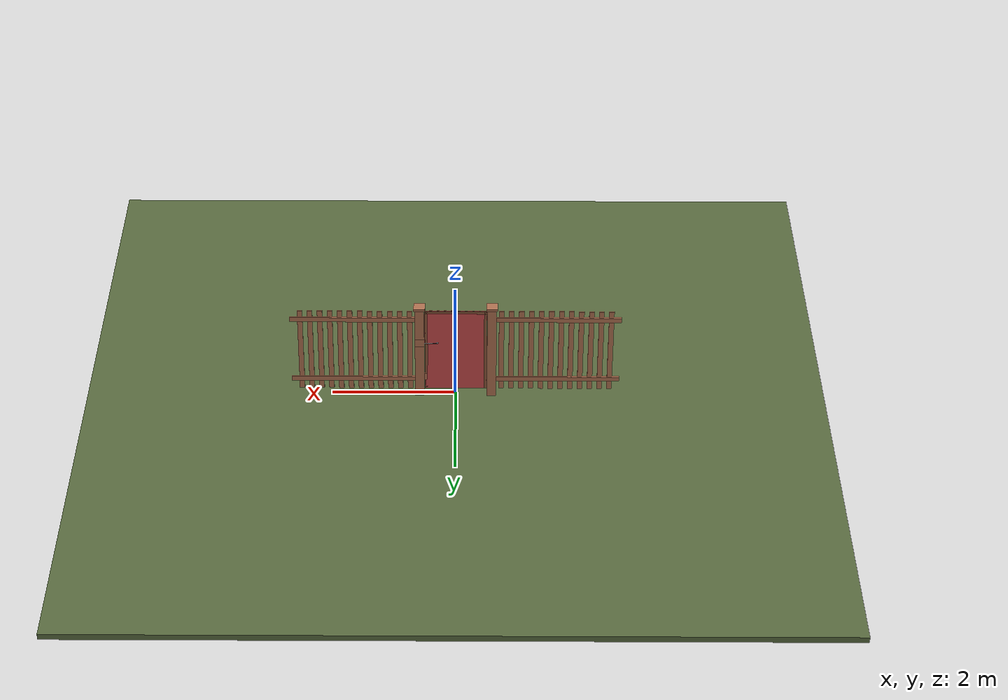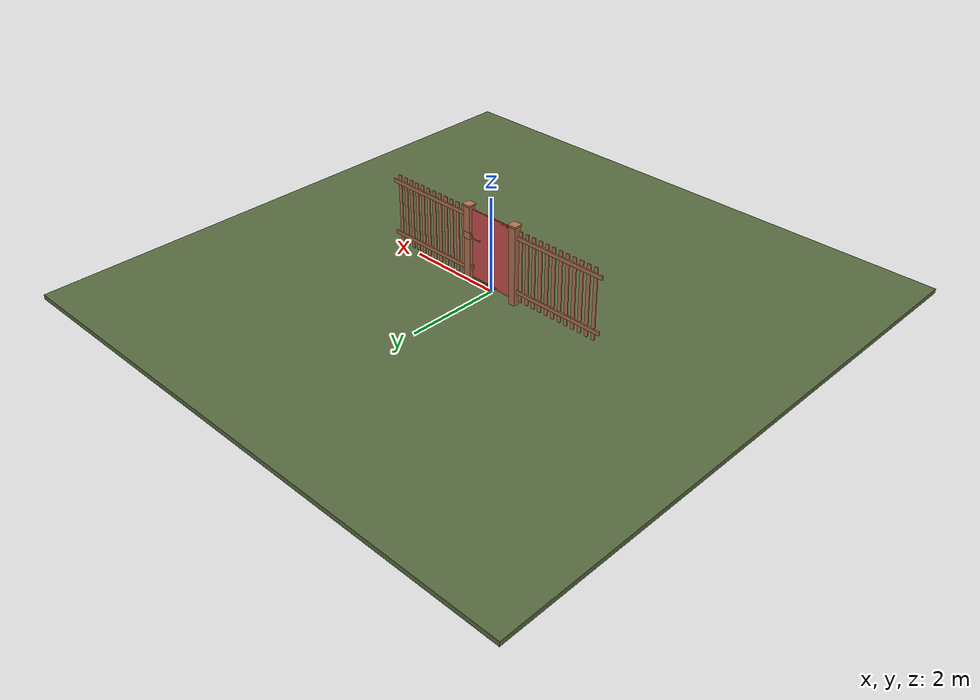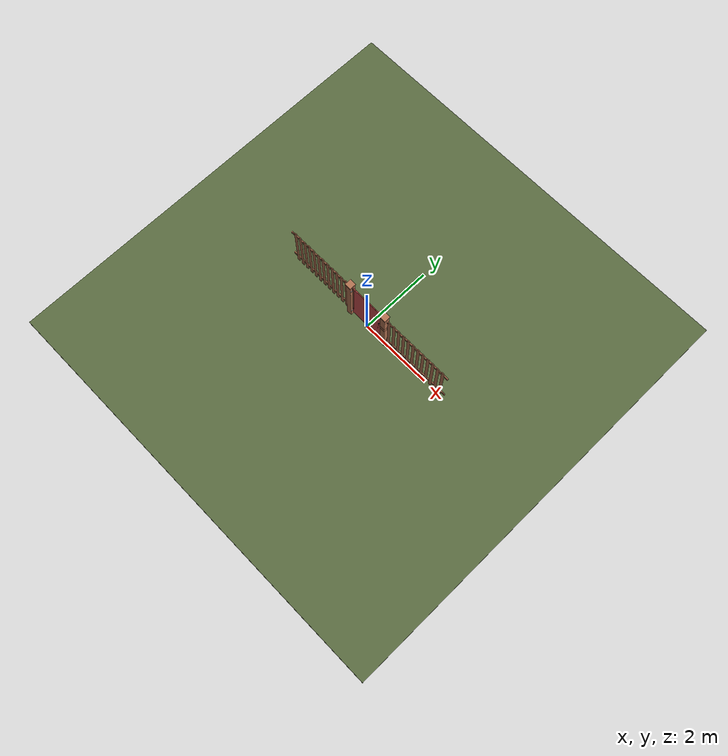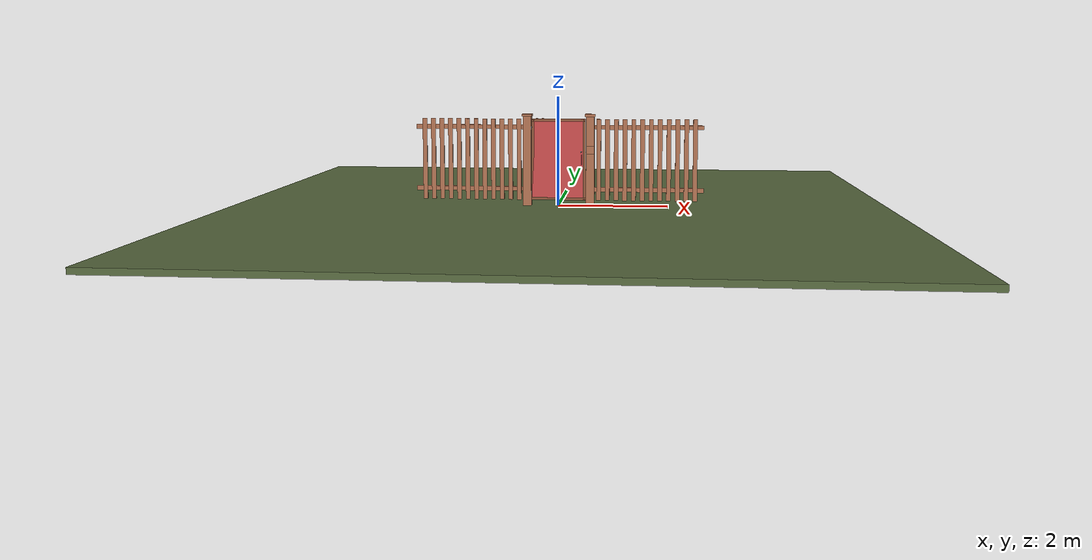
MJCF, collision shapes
<?xml version="1.0" ?>
<mujoco model="db0281_gate_swing_full">
  <compiler angle="radian" meshdir="../../hardware" texturedir="../../textures" autolimits="true" inertiafromgeom="false"/>
  <option timestep="0.002" integrator="implicitfast" cone="elliptic" impratio="10" noslip_iterations="3">
    <flag multiccd="enable"/>
  </option>
  <size memory="16M"/>
  <default>
    <geom condim="4" solref="0.005 1" solimp="0.95 0.99 0.001"/>
    <joint solreflimit="0.005 1" solimplimit="0.95 0.99 0.001"/>
    <tendon solreflimit="0.005 1"/>
    <equality solref="0.002 1"/>
  </default>
  <visual>
    <headlight ambient="0.4 0.4 0.4" diffuse="0.7 0.7 0.7" specular="0.2 0.2 0.2"/>
    <quality shadowsize="4096"/>
    <map znear="0.01" zfar="60"/>
  </visual>
  <asset>
    <mesh name="strap_hinge_f1a982ddce" file="strap_hinge_f1a982ddce.obj"/>
    <mesh name="thumb_latch_0073ea78ed" file="thumb_latch_0073ea78ed.obj"/>
    <material name="mat_floor" rgba="0.35 0.42 0.25 1" specular="0.2" shininess="0.15" reflectance="0"/>
    <material name="mat_wall" rgba="0.78 0.76 0.7 1" specular="0.2" shininess="0.1" reflectance="0"/>
    <material name="mat_leaf" rgba="0.561 0.342 0.231 1" specular="0.2" shininess="0.4" reflectance="0"/>
    <material name="mat_hinge" rgba="0.65 0.66 0.68 1" specular="0.74" shininess="0.5" reflectance="0.36"/>
    <material name="mat_op_wrought_iron" rgba="0.08 0.08 0.09 1" specular="0.56" shininess="0.25" reflectance="0.24"/>
    <material name="mat_frame" rgba="0.7 0.45 0.32 1" specular="0.2" shininess="0.4" reflectance="0"/>
    <material name="mat_fence" rgba="0.7 0.45 0.32 1" specular="0.2" shininess="0.4" reflectance="0"/>
    <texture name="skybox" type="skybox" builtin="gradient" rgb1="0.6 0.7 0.85" rgb2="0.9 0.92 0.95" width="256" height="256"/>
  </asset>
  <worldbody>
    <light name="sun" pos="1.5 -2.5 4" dir="-0.3 0.5 -0.8" directional="true" diffuse="0.8 0.8 0.8" specular="0.3 0.3 0.3" castshadow="true"/>
    <light name="fill" pos="-1.5 2.5 3" dir="0.3 -0.5 -0.7" directional="true" diffuse="0.35 0.35 0.4" castshadow="false"/>
    <camera name="robot_view" pos="0 -2.05 1.334" xyaxes="1 0 0 0 0.26963 0.962964" fovy="52"/>
    <camera name="far_view" pos="0 2.05 1.334" xyaxes="-1 0 0 0 -0.26963 0.962964" fovy="52"/>
    <camera name="iso" pos="1.558 -1.722 1.662" xyaxes="0.741536 0.670913 0 -0.242917 0.268487 0.932151" fovy="46"/>
    <camera name="detail_handle" pos="0.597 -0.8475 1.13" xyaxes="0.97561 0.219512 0 -0.070934 0.315262 0.94635" fovy="38"/>
    <geom name="floor" type="box" size="6 6 0.05" pos="0 0 -0.05" material="mat_floor" group="0" contype="1" conaffinity="1" friction="0.8 0.005 0.0001" density="2400"/>
    <geom name="hinge_pintle_0" type="cylinder" size="0.008 0.02" pos="-0.503 -0.05 0.224" material="mat_hinge" group="1" contype="0" conaffinity="0" density="7850"/>
    <geom name="hinge_pintle_1" type="cylinder" size="0.008 0.02" pos="-0.503 -0.05 1.424" material="mat_hinge" group="1" contype="0" conaffinity="0" density="7850"/>
    <geom name="leaf_latch_bar_keeper_b" type="box" size="0.015 0.0025 0.0005" pos="0.5055 0.0245 0.9625" quat="-0.5 -0.5 0.5 0.5" material="mat_op_wrought_iron" group="1" contype="0" conaffinity="0" density="7800"/>
    <geom name="leaf_latch_bar_keeper_l" type="box" size="0.0025 0.07 0.0005" pos="0.5055 0.037 1.035" quat="-0.5 -0.5 0.5 0.5" material="mat_op_wrought_iron" group="1" contype="0" conaffinity="0" density="7800"/>
    <geom name="leaf_latch_bar_keeper_t" type="box" size="0.015 0.0025 0.0005" pos="0.5055 0.0245 1.1075" quat="-0.5 -0.5 0.5 0.5" material="mat_op_wrought_iron" group="1" contype="0" conaffinity="0" density="7800"/>
    <geom name="leaf_latch_bar_keeper_r" type="box" size="0.0025 0.07 0.0005" pos="0.5055 0.012 1.035" quat="-0.5 -0.5 0.5 0.5" material="mat_op_wrought_iron" group="1" contype="0" conaffinity="0" density="7800"/>
    <geom name="post_hinge" type="box" size="0.075 0.075 0.825" pos="-0.581 0 0.825" material="mat_frame" group="0" contype="1" conaffinity="1" friction="0.6 0.005 0.0001" density="350"/>
    <geom name="post_hinge_cap" type="box" size="0.09 0.09 0.02" pos="-0.581 0 1.67" material="mat_frame" group="1" contype="0" conaffinity="0" density="350"/>
    <geom name="post_1035_wall_n" type="box" size="0.075 0.02025 0.07" pos="0.581 0.05475 1.035" material="mat_frame" group="0" contype="1" conaffinity="1" friction="0.6 0.005 0.0001" density="350"/>
    <geom name="post_1035_wall_p" type="box" size="0.075 0.04475 0.07" pos="0.581 -0.03025 1.035" material="mat_frame" group="0" contype="1" conaffinity="1" friction="0.6 0.005 0.0001" density="350"/>
    <geom name="post_1035_back" type="box" size="0.065 0.01 0.07" pos="0.591 0.0245 1.035" material="mat_frame" group="0" contype="1" conaffinity="1" friction="0.6 0.005 0.0001" density="350"/>
    <geom name="post_latch_0" type="box" size="0.075 0.075 0.4825" pos="0.581 0 0.4825" material="mat_frame" group="0" contype="1" conaffinity="1" friction="0.6 0.005 0.0001" density="350"/>
    <geom name="post_latch_1" type="box" size="0.075 0.075 0.2725" pos="0.581 0 1.3775" material="mat_frame" group="0" contype="1" conaffinity="1" friction="0.6 0.005 0.0001" density="350"/>
    <geom name="post_latch_cap" type="box" size="0.09 0.09 0.02" pos="0.581 0 1.67" material="mat_frame" group="1" contype="0" conaffinity="0" density="350"/>
    <geom name="gate_stop" type="box" size="0.02 0.012 0.06" pos="0.486 0.0245 0.35" material="mat_frame" group="0" contype="1" conaffinity="1" friction="0.6 0.005 0.0001" density="350"/>
    <geom name="fence_picket_l_0" type="box" size="0.04 0.01 0.75" pos="-0.736 0 0.85" material="mat_fence" group="0" contype="1" conaffinity="1" friction="0.6 0.005 0.0001" density="400"/>
    <geom name="fence_picket_l_1" type="box" size="0.04 0.01 0.75" pos="-0.896 0 0.85" material="mat_fence" group="0" contype="1" conaffinity="1" friction="0.6 0.005 0.0001" density="400"/>
    <geom name="fence_picket_l_2" type="box" size="0.04 0.01 0.75" pos="-1.056 0 0.85" material="mat_fence" group="0" contype="1" conaffinity="1" friction="0.6 0.005 0.0001" density="400"/>
    <geom name="fence_picket_l_3" type="box" size="0.04 0.01 0.75" pos="-1.216 0 0.85" material="mat_fence" group="0" contype="1" conaffinity="1" friction="0.6 0.005 0.0001" density="400"/>
    <geom name="fence_picket_l_4" type="box" size="0.04 0.01 0.75" pos="-1.376 0 0.85" material="mat_fence" group="0" contype="1" conaffinity="1" friction="0.6 0.005 0.0001" density="400"/>
    <geom name="fence_picket_l_5" type="box" size="0.04 0.01 0.75" pos="-1.536 0 0.85" material="mat_fence" group="0" contype="1" conaffinity="1" friction="0.6 0.005 0.0001" density="400"/>
    <geom name="fence_picket_l_6" type="box" size="0.04 0.01 0.75" pos="-1.696 0 0.85" material="mat_fence" group="0" contype="1" conaffinity="1" friction="0.6 0.005 0.0001" density="400"/>
    <geom name="fence_picket_l_7" type="box" size="0.04 0.01 0.75" pos="-1.856 0 0.85" material="mat_fence" group="0" contype="1" conaffinity="1" friction="0.6 0.005 0.0001" density="400"/>
    <geom name="fence_picket_l_8" type="box" size="0.04 0.01 0.75" pos="-2.016 0 0.85" material="mat_fence" group="0" contype="1" conaffinity="1" friction="0.6 0.005 0.0001" density="400"/>
    <geom name="fence_picket_l_9" type="box" size="0.04 0.01 0.75" pos="-2.176 0 0.85" material="mat_fence" group="0" contype="1" conaffinity="1" friction="0.6 0.005 0.0001" density="400"/>
    <geom name="fence_picket_l_10" type="box" size="0.04 0.01 0.75" pos="-2.336 0 0.85" material="mat_fence" group="0" contype="1" conaffinity="1" friction="0.6 0.005 0.0001" density="400"/>
    <geom name="fence_picket_l_11" type="box" size="0.04 0.01 0.75" pos="-2.496 0 0.85" material="mat_fence" group="0" contype="1" conaffinity="1" friction="0.6 0.005 0.0001" density="400"/>
    <geom name="fence_rail_l" type="box" size="1 0.015 0.04" pos="-1.656 0.015 1.45" material="mat_fence" group="0" contype="1" conaffinity="1" friction="0.6 0.005 0.0001" density="400"/>
    <geom name="fence_rail_b_l" type="box" size="1 0.015 0.04" pos="-1.656 0.015 0.3" material="mat_fence" group="0" contype="1" conaffinity="1" friction="0.6 0.005 0.0001" density="400"/>
    <geom name="fence_picket_r_0" type="box" size="0.04 0.01 0.75" pos="0.736 0 0.85" material="mat_fence" group="0" contype="1" conaffinity="1" friction="0.6 0.005 0.0001" density="400"/>
    <geom name="fence_picket_r_1" type="box" size="0.04 0.01 0.75" pos="0.896 0 0.85" material="mat_fence" group="0" contype="1" conaffinity="1" friction="0.6 0.005 0.0001" density="400"/>
    <geom name="fence_picket_r_2" type="box" size="0.04 0.01 0.75" pos="1.056 0 0.85" material="mat_fence" group="0" contype="1" conaffinity="1" friction="0.6 0.005 0.0001" density="400"/>
    <geom name="fence_picket_r_3" type="box" size="0.04 0.01 0.75" pos="1.216 0 0.85" material="mat_fence" group="0" contype="1" conaffinity="1" friction="0.6 0.005 0.0001" density="400"/>
    <geom name="fence_picket_r_4" type="box" size="0.04 0.01 0.75" pos="1.376 0 0.85" material="mat_fence" group="0" contype="1" conaffinity="1" friction="0.6 0.005 0.0001" density="400"/>
    <geom name="fence_picket_r_5" type="box" size="0.04 0.01 0.75" pos="1.536 0 0.85" material="mat_fence" group="0" contype="1" conaffinity="1" friction="0.6 0.005 0.0001" density="400"/>
    <geom name="fence_picket_r_6" type="box" size="0.04 0.01 0.75" pos="1.696 0 0.85" material="mat_fence" group="0" contype="1" conaffinity="1" friction="0.6 0.005 0.0001" density="400"/>
    <geom name="fence_picket_r_7" type="box" size="0.04 0.01 0.75" pos="1.856 0 0.85" material="mat_fence" group="0" contype="1" conaffinity="1" friction="0.6 0.005 0.0001" density="400"/>
    <geom name="fence_picket_r_8" type="box" size="0.04 0.01 0.75" pos="2.016 0 0.85" material="mat_fence" group="0" contype="1" conaffinity="1" friction="0.6 0.005 0.0001" density="400"/>
    <geom name="fence_picket_r_9" type="box" size="0.04 0.01 0.75" pos="2.176 0 0.85" material="mat_fence" group="0" contype="1" conaffinity="1" friction="0.6 0.005 0.0001" density="400"/>
    <geom name="fence_picket_r_10" type="box" size="0.04 0.01 0.75" pos="2.336 0 0.85" material="mat_fence" group="0" contype="1" conaffinity="1" friction="0.6 0.005 0.0001" density="400"/>
    <geom name="fence_picket_r_11" type="box" size="0.04 0.01 0.75" pos="2.496 0 0.85" material="mat_fence" group="0" contype="1" conaffinity="1" friction="0.6 0.005 0.0001" density="400"/>
    <geom name="fence_rail_r" type="box" size="1 0.015 0.04" pos="1.656 0.015 1.45" material="mat_fence" group="0" contype="1" conaffinity="1" friction="0.6 0.005 0.0001" density="400"/>
    <geom name="fence_rail_b_r" type="box" size="1 0.015 0.04" pos="1.656 0.015 0.3" material="mat_fence" group="0" contype="1" conaffinity="1" friction="0.6 0.005 0.0001" density="400"/>
    <geom name="gate_stop_strap_0" type="box" size="0.0755 0.0096 0.048" pos="0.581 0.0245 0.35" material="mat_frame" group="1" contype="0" conaffinity="0" density="7850"/>
    <site name="approach_point" pos="0 -1.5 0" quat="1 0 0 0" size="0.05" rgba="0.2 0.9 0.2 0.5" group="4"/>
    <site name="goal_point" pos="0 1.5 0" quat="1 0 0 0" size="0.05" rgba="0.2 0.9 0.2 0.5" group="4"/>
    <site name="door_plane_center" pos="0 0 0.76" quat="1 0 0 0" size="0.02" rgba="0.2 0.9 0.2 0.5" group="4"/>
    <body name="leaf" pos="-0.506 0 0">
      <inertial pos="0.482097 -0.003811 0.850432" mass="14.105048" quat="0.499894 0.500784 -0.499194 0.500127" diaginertia="1.364966893 2.77421176 4.134784995"/>
      <joint name="leaf_hinge" type="hinge" axis="0 0 -1" pos="0.003 -0.05 0" limited="true" range="0 1.570796" damping="0.3209" frictionloss="0.759236" armature="0.02"/>
      <geom name="leaf_slab_col" type="box" size="0.5 0.0125 0.75" pos="0.503 0 0.85" material="mat_leaf" group="3" contype="1" conaffinity="1" rgba="0.8 0.3 0.3 0.25" friction="0.35 0.005 0.0001" density="1"/>
      <geom name="leaf_rail_b" type="box" size="0.5 0.0125 0.0225" pos="0.503 0 0.1225" material="mat_leaf" group="1" contype="0" conaffinity="0" density="1"/>
      <geom name="leaf_rail_t" type="box" size="0.5 0.0125 0.0225" pos="0.503 0 1.5775" material="mat_leaf" group="1" contype="0" conaffinity="0" density="1"/>
      <geom name="leaf_stile_h" type="box" size="0.0225 0.0125 0.75" pos="0.0255 0 0.85" material="mat_leaf" group="1" contype="0" conaffinity="0" density="1"/>
      <geom name="leaf_stile_l" type="box" size="0.0225 0.0125 0.75" pos="0.9805 0 0.85" material="mat_leaf" group="1" contype="0" conaffinity="0" density="1"/>
      <geom name="leaf_picket_0" type="box" size="0.02 0.00875 0.7365" pos="0.104875 0 0.87" material="mat_leaf" group="1" contype="0" conaffinity="0" density="1"/>
      <geom name="leaf_picket_1" type="box" size="0.02 0.00875 0.7365" pos="0.218625 0 0.87" material="mat_leaf" group="1" contype="0" conaffinity="0" density="1"/>
      <geom name="leaf_picket_2" type="box" size="0.02 0.00875 0.7365" pos="0.332375 0 0.87" material="mat_leaf" group="1" contype="0" conaffinity="0" density="1"/>
      <geom name="leaf_picket_3" type="box" size="0.02 0.00875 0.7365" pos="0.446125 0 0.87" material="mat_leaf" group="1" contype="0" conaffinity="0" density="1"/>
      <geom name="leaf_picket_4" type="box" size="0.02 0.00875 0.7365" pos="0.559875 0 0.87" material="mat_leaf" group="1" contype="0" conaffinity="0" density="1"/>
      <geom name="leaf_picket_5" type="box" size="0.02 0.00875 0.7365" pos="0.673625 0 0.87" material="mat_leaf" group="1" contype="0" conaffinity="0" density="1"/>
      <geom name="leaf_picket_6" type="box" size="0.02 0.00875 0.7365" pos="0.787375 0 0.87" material="mat_leaf" group="1" contype="0" conaffinity="0" density="1"/>
      <geom name="leaf_picket_7" type="box" size="0.02 0.00875 0.7365" pos="0.901125 0 0.87" material="mat_leaf" group="1" contype="0" conaffinity="0" density="1"/>
      <geom name="hinge_strap_0" type="mesh" mesh="strap_hinge_f1a982ddce" pos="0.003 -0.0155 0.25" material="mat_hinge" group="1" contype="0" conaffinity="0" density="7850"/>
      <geom name="hinge_strap_eye_0" type="cylinder" size="0.011 0.012" pos="0.003 -0.05 0.25" material="mat_hinge" group="1" contype="0" conaffinity="0" density="7850"/>
      <geom name="hinge_strap_neck_0" type="box" size="0.012 0.02125 0.006" pos="0.003 -0.03275 0.25" material="mat_hinge" group="1" contype="0" conaffinity="0" density="7850"/>
      <geom name="hinge_strap_1" type="mesh" mesh="strap_hinge_f1a982ddce" pos="0.003 -0.0155 1.45" material="mat_hinge" group="1" contype="0" conaffinity="0" density="7850"/>
      <geom name="hinge_strap_eye_1" type="cylinder" size="0.011 0.012" pos="0.003 -0.05 1.45" material="mat_hinge" group="1" contype="0" conaffinity="0" density="7850"/>
      <geom name="hinge_strap_neck_1" type="box" size="0.012 0.02125 0.006" pos="0.003 -0.03275 1.45" material="mat_hinge" group="1" contype="0" conaffinity="0" density="7850"/>
      <geom name="leaf_suffolk_grip" type="mesh" mesh="thumb_latch_0073ea78ed" pos="0.923 -0.0125 0.85" quat="0.707107 0.707107 0 0" material="mat_op_wrought_iron" group="1" contype="0" conaffinity="0" density="7000"/>
      <geom name="leaf_suffolk_grip_col" type="capsule" size="0.008 0.09" pos="0.923 -0.0475 0.85" material="mat_op_wrought_iron" group="3" contype="1" conaffinity="1" rgba="0.8 0.3 0.3 0.25" friction="0.7 0.01 0.0001" density="7000"/>
      <geom name="leaf_latch_bar_pivot" type="box" size="0.018 0.002 0.018" pos="0.803 0.0145 0.99" material="mat_op_wrought_iron" group="1" contype="0" conaffinity="0" density="7000"/>
      <geom name="leaf_latch_bar_pin" type="cylinder" size="0.005 0.01" pos="0.803 0.0225 0.99" quat="0.707107 -0.707107 0 0" material="mat_op_wrought_iron" group="1" contype="0" conaffinity="0" density="7000"/>
      <site name="leaf_grip_n" pos="0.923 -0.0475 0.85" quat="1 0 0 0" size="0.012" rgba="0.2 0.9 0.2 0.5" group="4"/>
      <site name="leaf_edge_mid" pos="1.003 0 0.75" quat="1 0 0 0" size="0.02" rgba="0.2 0.9 0.2 0.5" group="4"/>
      <body name="leaf_thumb" pos="0.923 -0.0125 0.995">
        <inertial pos="0 -0.005933 -0.005008" mass="0.119952" quat="0.694063 -0.13519 -0.13519 -0.694063" diaginertia="0.000010452 0.000028338 0.000030045"/>
        <joint name="leaf_thumb_hinge" type="hinge" axis="1 0 0" limited="true" range="0 0.3" damping="0.155195" frictionloss="0.032" stiffness="0.6" springref="-0.5" armature="0.01"/>
        <geom name="leaf_thumb_geom" type="box" size="0.015 0.014 0.003" pos="0 -0.02 0" material="mat_op_wrought_iron" group="0" contype="1" conaffinity="1" friction="0.6 0.005 0.0001" density="7000"/>
        <geom name="leaf_thumb_boss" type="box" size="0.012 0.008 0.013" pos="0 -0.004 -0.005" material="mat_op_wrought_iron" group="1" contype="0" conaffinity="0" density="7000"/>
        <geom name="leaf_thumb_lifter" type="box" size="0.004 0.0165 0.004" pos="0 0.0185 -0.017" material="mat_op_wrought_iron" group="1" contype="0" conaffinity="0" density="7000"/>
        <site name="leaf_thumb_push" pos="0 -0.024 0.005" quat="1 0 0 0" size="0.01" rgba="0.2 0.9 0.2 0.5" group="4"/>
      </body>
      <body name="leaf_latch_bar" pos="0.803 0.0245 0.99">
        <inertial pos="0.106 0 0" mass="0.25" quat="0 0 0.707107 0.707107" diaginertia="0.000004465 0.000904065 0.000904065"/>
        <joint name="leaf_latch_bar_hinge" type="hinge" axis="0 -1 0" limited="true" range="0 0.6" damping="0.01" frictionloss="0.01" armature="0.005"/>
        <geom name="leaf_latch_bar_geom" type="capsule" size="0.006 0.1" pos="0.106 0 0" quat="0.707107 0 0.707107 0" material="mat_op_wrought_iron" group="0" contype="1" conaffinity="1" friction="0.6 0.005 0.0001" density="7850"/>
      </body>
    </body>
  </worldbody>
  <equality>
    <joint name="leaf_thumb_couple" joint1="leaf_latch_bar_hinge" joint2="leaf_thumb_hinge" polycoef="0 2 0 0 0" active="true"/>
  </equality>
  <sensor>
    <jointpos name="leaf_hinge_pos" joint="leaf_hinge"/>
    <jointvel name="leaf_hinge_vel" joint="leaf_hinge"/>
    <jointpos name="leaf_thumb_hinge_pos" joint="leaf_thumb_hinge"/>
    <jointvel name="leaf_thumb_hinge_vel" joint="leaf_thumb_hinge"/>
    <jointpos name="leaf_latch_bar_hinge_pos" joint="leaf_latch_bar_hinge"/>
    <jointvel name="leaf_latch_bar_hinge_vel" joint="leaf_latch_bar_hinge"/>
  </sensor>
</mujoco>
